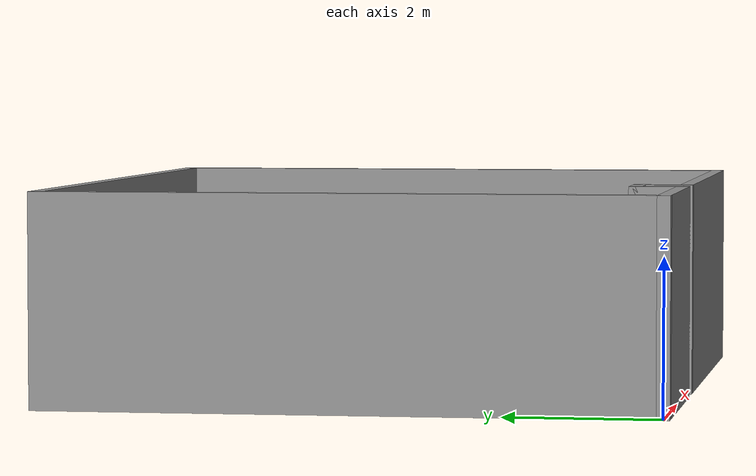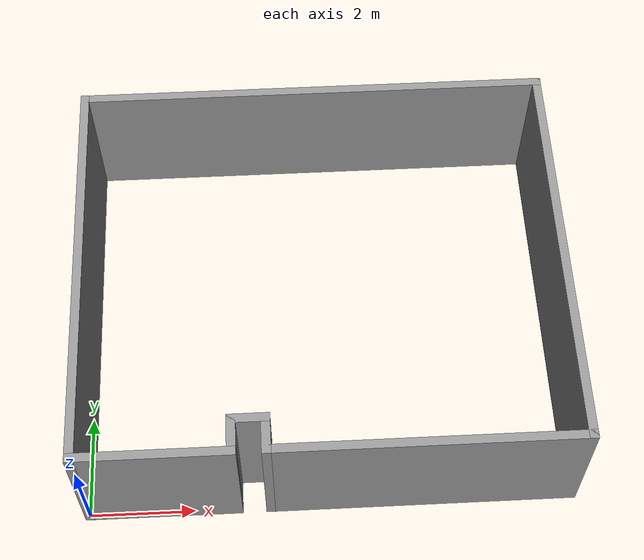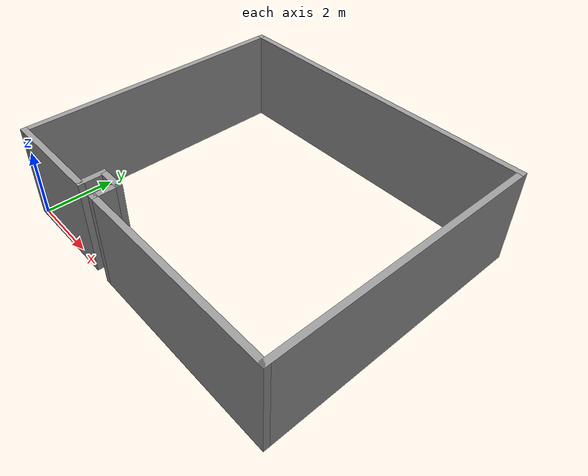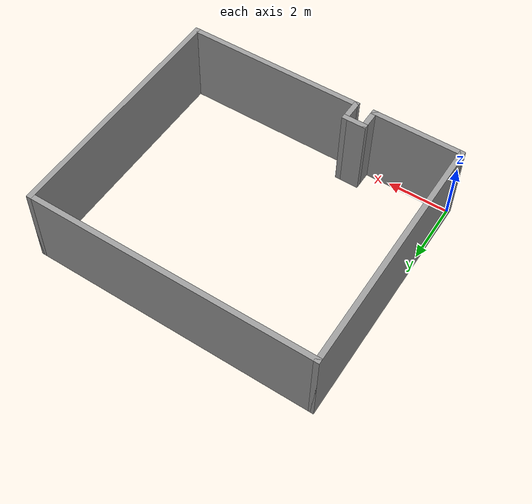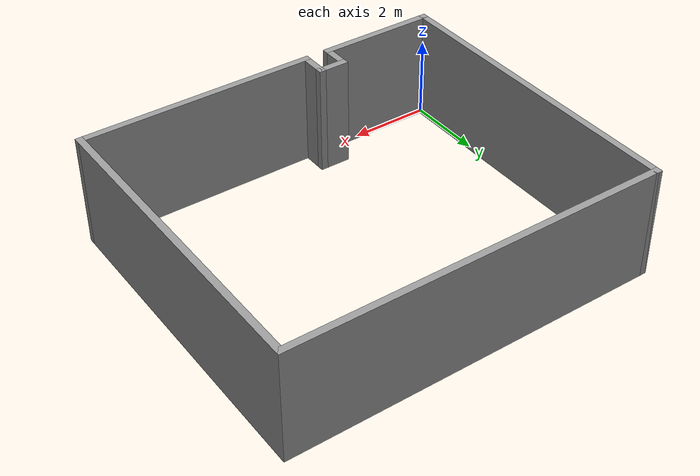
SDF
<?xml version='1.0'?>
<sdf version='1.6'>
  <model name='lab'>
    <pose>4.5875 3.9375 0 0 -0 0</pose>
    <link name='Wall_0'>
      <collision name='Wall_0_Collision'>
        <geometry>
          <box>
            <size>8.045 0.17 2.75</size>
          </box>
        </geometry>
        <pose>0 0 1.375 0 -0 0</pose>
      </collision>
      <visual name='Wall_0_Visual'>
        <pose>0 0 1.375 0 -0 0</pose>
        <geometry>
          <box>
            <size>8.045 0.17 2.75</size>
          </box>
        </geometry>
        <material>
          <script>
            <uri>file://media/materials/scripts/gazebo.material</uri>
            <name>Gazebo/Grey</name>
          </script>
          <ambient>1 1 1 1</ambient>
        </material>
        <meta>
          <layer>0</layer>
        </meta>
      </visual>
      <pose>-4.5875 0 0 0 -0 1.5708</pose>
    </link>
    <link name='Wall_1'>
      <collision name='Wall_1_Collision'>
        <geometry>
          <box>
            <size>9.345 0.17 2.75</size>
          </box>
        </geometry>
        <pose>0 0 1.375 0 -0 0</pose>
      </collision>
      <visual name='Wall_1_Visual'>
        <pose>0 0 1.375 0 -0 0</pose>
        <geometry>
          <box>
            <size>9.345 0.17 2.75</size>
          </box>
        </geometry>
        <material>
          <script>
            <uri>file://media/materials/scripts/gazebo.material</uri>
            <name>Gazebo/Grey</name>
          </script>
          <ambient>1 1 1 1</ambient>
        </material>
        <meta>
          <layer>0</layer>
        </meta>
      </visual>
      <pose>0 3.9375 0 0 -0 0</pose>
    </link>
    <link name='Wall_2'>
      <collision name='Wall_2_Collision'>
        <geometry>
          <box>
            <size>8.045 0.17 2.75</size>
          </box>
        </geometry>
        <pose>0 0 1.375 0 -0 0</pose>
      </collision>
      <visual name='Wall_2_Visual'>
        <pose>0 0 1.375 0 -0 0</pose>
        <geometry>
          <box>
            <size>8.045 0.17 2.75</size>
          </box>
        </geometry>
        <material>
          <script>
            <uri>file://media/materials/scripts/gazebo.material</uri>
            <name>Gazebo/Grey</name>
          </script>
          <ambient>1 1 1 1</ambient>
        </material>
        <meta>
          <layer>0</layer>
        </meta>
      </visual>
      <pose>4.5875 0 0 0 -0 -1.5708</pose>
    </link>
    <link name='Wall_3'>
      <collision name='Wall_3_Collision'>
        <geometry>
          <box>
            <size>5.91 0.17 2.75</size>
          </box>
        </geometry>
        <pose>0 0 1.375 0 -0 0</pose>
      </collision>
      <visual name='Wall_3_Visual'>
        <pose>0 0 1.375 0 -0 0</pose>
        <geometry>
          <box>
            <size>5.91 0.17 2.75</size>
          </box>
        </geometry>
        <material>
          <script>
            <uri>file://media/materials/scripts/gazebo.material</uri>
            <name>Gazebo/Grey</name>
          </script>
          <ambient>1 1 1 1</ambient>
        </material>
        <meta>
          <layer>0</layer>
        </meta>
      </visual>
      <pose>1.7175 -3.9375 0 0 -0 3.14159</pose>
    </link>
    <link name='Wall_4'>
      <collision name='Wall_4_Collision'>
        <geometry>
          <box>
            <size>0.785 0.17 2.75</size>
          </box>
        </geometry>
        <pose>0 0 1.375 0 -0 0</pose>
      </collision>
      <visual name='Wall_4_Visual'>
        <pose>0 0 1.375 0 -0 0</pose>
        <geometry>
          <box>
            <size>0.785 0.17 2.75</size>
          </box>
        </geometry>
        <material>
          <script>
            <uri>file://media/materials/scripts/gazebo.material</uri>
            <name>Gazebo/Grey</name>
          </script>
          <ambient>1 1 1 1</ambient>
        </material>
        <meta>
          <layer>0</layer>
        </meta>
      </visual>
      <pose>-1.1525 -3.63 0 0 -0 1.5708</pose>
    </link>
    <link name='Wall_5'>
      <collision name='Wall_5_Collision'>
        <geometry>
          <box>
            <size>0.785 0.17 2.75</size>
          </box>
        </geometry>
        <pose>0 0 1.375 0 -0 0</pose>
      </collision>
      <visual name='Wall_5_Visual'>
        <pose>0 0 1.375 0 -0 0</pose>
        <geometry>
          <box>
            <size>0.785 0.17 2.75</size>
          </box>
        </geometry>
        <material>
          <script>
            <uri>file://media/materials/scripts/gazebo.material</uri>
            <name>Gazebo/Grey</name>
          </script>
          <ambient>1 1 1 1</ambient>
        </material>
        <meta>
          <layer>0</layer>
        </meta>
      </visual>
      <pose>-1.46 -3.3225 0 0 -0 3.14159</pose>
    </link>
    <link name='Wall_6'>
      <collision name='Wall_6_Collision'>
        <geometry>
          <box>
            <size>0.785 0.17 2.75</size>
          </box>
        </geometry>
        <pose>0 0 1.375 0 -0 0</pose>
      </collision>
      <visual name='Wall_6_Visual'>
        <pose>0 0 1.375 0 -0 0</pose>
        <geometry>
          <box>
            <size>0.785 0.17 2.75</size>
          </box>
        </geometry>
        <material>
          <script>
            <uri>file://media/materials/scripts/gazebo.material</uri>
            <name>Gazebo/Grey</name>
          </script>
          <ambient>1 1 1 1</ambient>
        </material>
        <meta>
          <layer>0</layer>
        </meta>
      </visual>
      <pose>-1.7675 -3.63 0 0 -0 -1.5708</pose>
    </link>
    <link name='Wall_7'>
      <collision name='Wall_7_Collision'>
        <geometry>
          <box>
            <size>2.99 0.17 2.75</size>
          </box>
        </geometry>
        <pose>0 0 1.375 0 -0 0</pose>
      </collision>
      <visual name='Wall_7_Visual'>
        <pose>0 0 1.375 0 -0 0</pose>
        <geometry>
          <box>
            <size>2.99 0.17 2.75</size>
          </box>
        </geometry>
        <material>
          <script>
            <uri>file://media/materials/scripts/gazebo.material</uri>
            <name>Gazebo/Grey</name>
          </script>
          <ambient>1 1 1 1</ambient>
        </material>
        <meta>
          <layer>0</layer>
        </meta>
      </visual>
      <pose>-3.1775 -3.9375 0 0 -0 3.14159</pose>
    </link>
    <static>1</static>
  </model>
</sdf>
